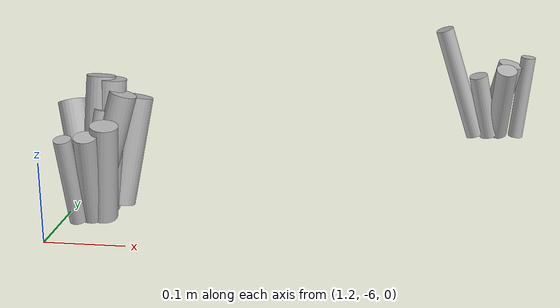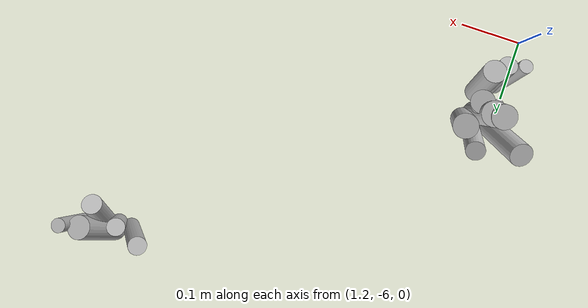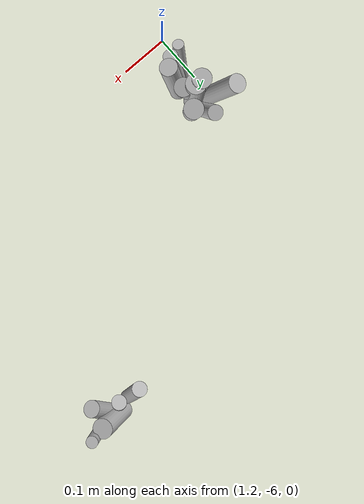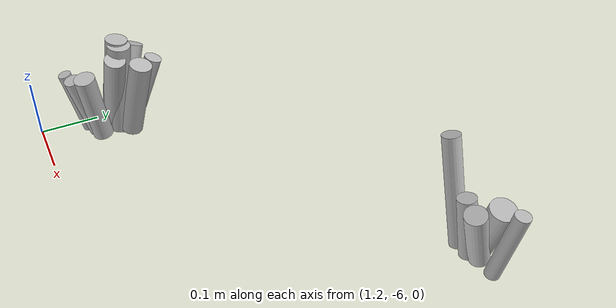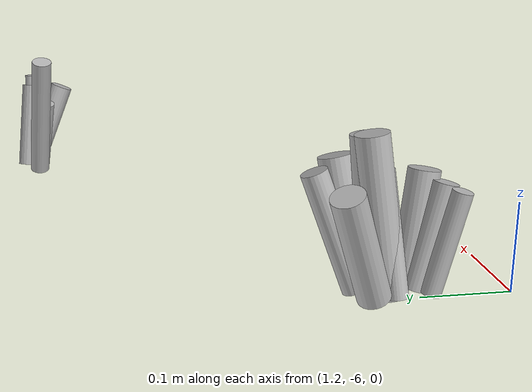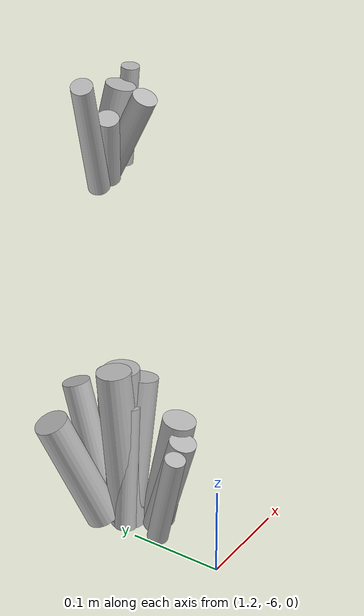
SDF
<sdf version="1.6">
 <world name="default">
  <model name="tussocks">
   <static>true</static>
   <link name="tuft106_0">
    <pose>1.2436 -5.8699 0.0736 0 0.2862 0.2204</pose>
    <visual name="tuft106_0_v">
     <geometry><cylinder><radius>0.0178</radius><length>0.1600</length></cylinder></geometry>
     <material>
      <script>
       <uri>model://bushfire/materials/scripts</uri>
       <uri>model://bushfire/materials/textures</uri>
       <name>Bushfire/Tussock</name>
      </script>
     </material>
    </visual>
   </link>
   <link name="tuft106_1">
    <pose>1.2291 -5.8635 0.0819 0 0.1508 1.1697</pose>
    <visual name="tuft106_1_v">
     <geometry><cylinder><radius>0.0186</radius><length>0.1781</length></cylinder></geometry>
     <material>
      <script>
       <uri>model://bushfire/materials/scripts</uri>
       <uri>model://bushfire/materials/textures</uri>
       <name>Bushfire/Foliage2</name>
      </script>
     </material>
    </visual>
   </link>
   <link name="tuft106_2">
    <pose>1.1941 -5.8325 0.0618 0 0.4063 2.2022</pose>
    <visual name="tuft106_2_v">
     <geometry><cylinder><radius>0.0184</radius><length>0.1343</length></cylinder></geometry>
     <material>
      <script>
       <uri>model://bushfire/materials/scripts</uri>
       <uri>model://bushfire/materials/textures</uri>
       <name>Bushfire/Tussock</name>
      </script>
     </material>
    </visual>
   </link>
   <link name="tuft106_3">
    <pose>1.2404 -5.8183 0.0633 0 0.3563 1.2942</pose>
    <visual name="tuft106_3_v">
     <geometry><cylinder><radius>0.0149</radius><length>0.1375</length></cylinder></geometry>
     <material>
      <script>
       <uri>model://bushfire/materials/scripts</uri>
       <uri>model://bushfire/materials/textures</uri>
       <name>Bushfire/Tussock</name>
      </script>
     </material>
    </visual>
   </link>
   <link name="tuft106_4">
    <pose>1.2490 -5.9090 0.0593 0 0.1717 5.3251</pose>
    <visual name="tuft106_4_v">
     <geometry><cylinder><radius>0.0178</radius><length>0.1290</length></cylinder></geometry>
     <material>
      <script>
       <uri>model://bushfire/materials/scripts</uri>
       <uri>model://bushfire/materials/textures</uri>
       <name>Bushfire/Tussock</name>
      </script>
     </material>
    </visual>
   </link>
   <link name="tuft106_6">
    <pose>1.2623 -5.8371 0.0663 0 0.2411 0.7756</pose>
    <visual name="tuft106_6_v">
     <geometry><cylinder><radius>0.0192</radius><length>0.1442</length></cylinder></geometry>
     <material>
      <script>
       <uri>model://bushfire/materials/scripts</uri>
       <uri>model://bushfire/materials/textures</uri>
       <name>Bushfire/Tussock</name>
      </script>
     </material>
    </visual>
   </link>
   <link name="tuft106_8">
    <pose>1.2125 -5.9301 0.0541 0 0.2183 4.5005</pose>
    <visual name="tuft106_8_v">
     <geometry><cylinder><radius>0.0112</radius><length>0.1176</length></cylinder></geometry>
     <material>
      <script>
       <uri>model://bushfire/materials/scripts</uri>
       <uri>model://bushfire/materials/textures</uri>
       <name>Bushfire/Tussock</name>
      </script>
     </material>
    </visual>
   </link>
   <link name="tuft106_9">
    <pose>1.2405 -5.8586 0.0799 0 0.1163 0.7754</pose>
    <visual name="tuft106_9_v">
     <geometry><cylinder><radius>0.0194</radius><length>0.1737</length></cylinder></geometry>
     <material>
      <script>
       <uri>model://bushfire/materials/scripts</uri>
       <uri>model://bushfire/materials/textures</uri>
       <name>Bushfire/Tussock</name>
      </script>
     </material>
    </visual>
   </link>
   <link name="tuft106_10">
    <pose>1.2248 -5.8740 0.0630 0 0.2238 0.4483</pose>
    <visual name="tuft106_10_v">
     <geometry><cylinder><radius>0.0115</radius><length>0.1369</length></cylinder></geometry>
     <material>
      <script>
       <uri>model://bushfire/materials/scripts</uri>
       <uri>model://bushfire/materials/textures</uri>
       <name>Bushfire/Tussock</name>
      </script>
     </material>
    </visual>
   </link>
   <link name="tuft106_11">
    <pose>1.2334 -5.9207 0.0550 0 0.2443 4.9003</pose>
    <visual name="tuft106_11_v">
     <geometry><cylinder><radius>0.0146</radius><length>0.1195</length></cylinder></geometry>
     <material>
      <script>
       <uri>model://bushfire/materials/scripts</uri>
       <uri>model://bushfire/materials/textures</uri>
       <name>Bushfire/Tussock</name>
      </script>
     </material>
    </visual>
   </link>
   <link name="tuft173_0">
    <pose>1.7374 -5.5041 0.0470 0 0.2382 3.6997</pose>
    <visual name="tuft173_0_v">
     <geometry><cylinder><radius>0.0141</radius><length>0.1023</length></cylinder></geometry>
     <material>
      <script>
       <uri>model://bushfire/materials/scripts</uri>
       <uri>model://bushfire/materials/textures</uri>
       <name>Bushfire/Tussock</name>
      </script>
     </material>
    </visual>
   </link>
   <link name="tuft173_2">
    <pose>1.7966 -5.4915 0.0596 0 0.1071 6.2332</pose>
    <visual name="tuft173_2_v">
     <geometry><cylinder><radius>0.0112</radius><length>0.1295</length></cylinder></geometry>
     <material>
      <script>
       <uri>model://bushfire/materials/scripts</uri>
       <uri>model://bushfire/materials/textures</uri>
       <name>Bushfire/Foliage2</name>
      </script>
     </material>
    </visual>
   </link>
   <link name="tuft173_4">
    <pose>1.6993 -5.5049 0.0830 0 0.3084 3.3850</pose>
    <visual name="tuft173_4_v">
     <geometry><cylinder><radius>0.0135</radius><length>0.1804</length></cylinder></geometry>
     <material>
      <script>
       <uri>model://bushfire/materials/scripts</uri>
       <uri>model://bushfire/materials/textures</uri>
       <name>Bushfire/Tussock</name>
      </script>
     </material>
    </visual>
   </link>
   <link name="tuft173_5">
    <pose>1.7648 -5.5129 0.0562 0 0.3880 4.8953</pose>
    <visual name="tuft173_5_v">
     <geometry><cylinder><radius>0.0157</radius><length>0.1222</length></cylinder></geometry>
     <material>
      <script>
       <uri>model://bushfire/materials/scripts</uri>
       <uri>model://bushfire/materials/textures</uri>
       <name>Bushfire/Foliage2</name>
      </script>
     </material>
    </visual>
   </link>
   <link name="tuft173_8">
    <pose>1.7627 -5.4906 0.0552 0 0.2524 5.9080</pose>
    <visual name="tuft173_8_v">
     <geometry><cylinder><radius>0.0187</radius><length>0.1200</length></cylinder></geometry>
     <material>
      <script>
       <uri>model://bushfire/materials/scripts</uri>
       <uri>model://bushfire/materials/textures</uri>
       <name>Bushfire/Foliage2</name>
      </script>
     </material>
    </visual>
   </link>
  </model>
 </world>
</sdf>
